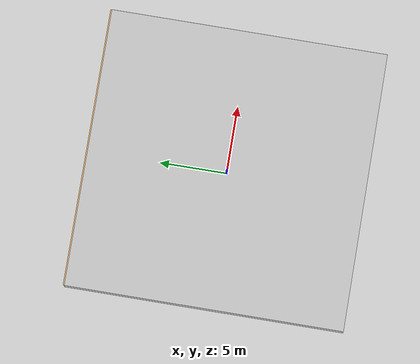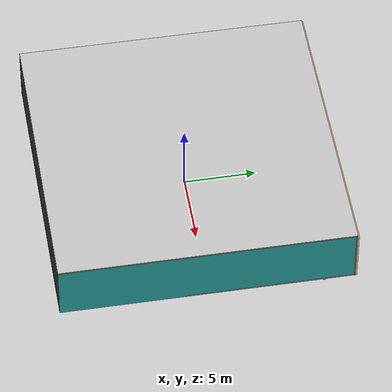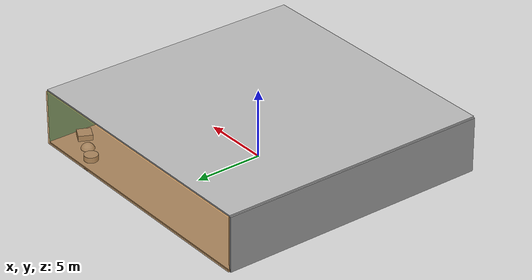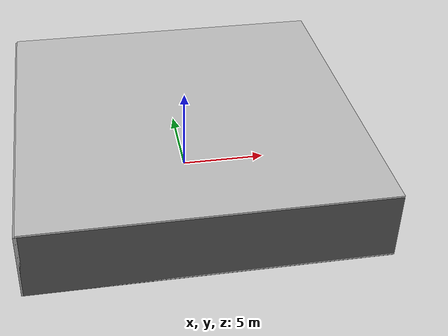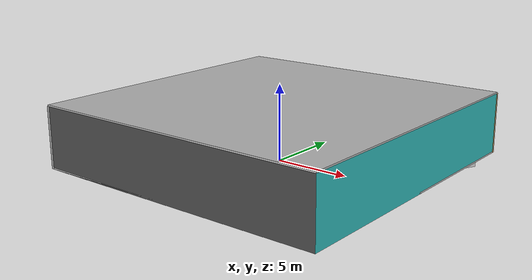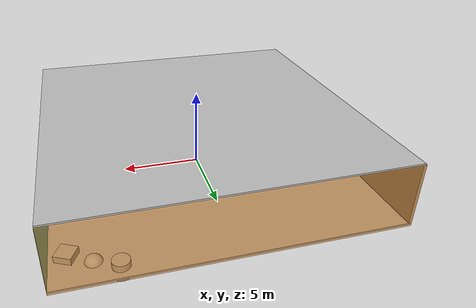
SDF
<sdf version="1.4">
 <world name="default">
  <physics type="ode">
   <max_step_size>0.001</max_step_size>
   <real_time_factor>1</real_time_factor>
   <real_time_update_rate>1000</real_time_update_rate>
   <gravity>0 0 -9.8</gravity>
  </physics>
  <scene><ambient>0.4 0.4 0.4 1</ambient><background>0.7 0.7 0.7 1</background><shadows>1</shadows></scene>
  <model name="Surrounding">
   <static>1</static>
   <link name="Ceiling">
    <collision name="Ceiling_Collision"><geometry><box><size>20 20 0.1</size></box></geometry></collision>
    <visual name="Ceiling_Visual">
     <geometry><box><size>20 20 0.1</size></box></geometry>
     <material>
      <script><uri>file://media/materials/scripts/gazebo.material</uri><name>Gazebo/LightOn</name></script>
     </material>
    </visual>
    <pose>0 0 4.05 0 0 0</pose>
   </link>
   <link name="Wall_South">
    <collision name="Wall_South_Collision">
     <geometry><box><size>20 0 4</size></box></geometry>
     <pose>0 0 2 0 -0 0</pose>
    </collision>
    <visual name="Wall_South_Visual">
     <pose>0 0 2 0 -0 0</pose>
     <geometry><box><size>20 0 4</size></box></geometry>
     <material>
      <script><uri>file://media/materials/scripts/gazebo.material</uri><name>Gazebo/Road</name></script>
     </material>
    </visual>
    <velocity_decay><linear>0</linear><angular>0</angular></velocity_decay>
    <pose>0 -10 0 0 -0 0</pose>
   </link>
   <link name="Wall_East">
    <collision name="Wall_21_Collision">
     <geometry><box><size>20 0 4</size></box></geometry>
     <pose>0 0 2 0 -0 0</pose>
    </collision>
    <visual name="Wall_21_Visual">
     <pose>0 0 2 0 -0 0</pose>
     <geometry><box><size>20 0 4</size></box></geometry>
     <material>
      <script><uri>file://media/materials/scripts/gazebo.material</uri><name>Gazebo/Turquoise</name></script>
     </material>
    </visual>
    <velocity_decay><linear>0</linear><angular>0</angular></velocity_decay>
    <pose>10 0 0 0 -0 1.5708</pose>
   </link>
   <link name="Wall_North">
    <collision name="Wall_22_Collision">
     <geometry><box><size>20 0.2 4</size></box></geometry>
     <pose>0 0 2 0 -0 0</pose>
    </collision>
    <visual name="Wall_22_Visual">
     <pose>0 0 2 0 -0 0</pose>
     <geometry><box><size>20 0.2 4</size></box></geometry>
     <material>
      <script>
       <uri>file://media/materials/scripts/gazebo.material</uri>
       <name>Gazebo/OrangeTransparent</name>
      </script>
     </material>
    </visual>
    <velocity_decay><linear>0</linear><angular>0</angular></velocity_decay>
    <pose>0 10 0 0 -0 0</pose>
   </link>
   <link name="Wall_West">
    <collision name="Wall_23_Collision">
     <geometry><box><size>20 0.2 4</size></box></geometry>
     <pose>0 0 2 0 -0 0</pose>
    </collision>
    <visual name="Wall_23_Visual">
     <pose>0 0 2 0 -0 0</pose>
     <geometry><box><size>20 0.2 4</size></box></geometry>
     <material>
      <script><uri>file://media/materials/scripts/gazebo.material</uri><name>Gazebo/GreyGradientSky</name></script>
     </material>
    </visual>
    <velocity_decay><linear>0</linear><angular>0</angular></velocity_decay>
    <pose>-10 0 0 0 0 -1.5708</pose>
   </link>
   <link name="Ground_link">
    <collision name="collision">
     <pose>0 0 .05 0 -0 0</pose>
     <geometry><box><size>20 20 0.1</size></box></geometry>
    </collision>
    <visual name="visual">
     <pose>0 0 .05 0 -0 0</pose>
     <geometry><box><size>20 20 0.1</size></box></geometry>
     <material>
      <script><uri>file://media/materials/scripts/gazebo.material</uri><name>Gazebo/LightOn</name></script>
     </material>
    </visual>
   </link>
   <static>1</static>
  </model>
  <spherical_coordinates>
   <surface_model>EARTH_WGS84</surface_model>
   <latitude_deg>0</latitude_deg>
   <longitude_deg>0</longitude_deg>
   <elevation>0</elevation>
   <heading_deg>0</heading_deg>
  </spherical_coordinates>
  <light name="lightball_0" type="diffuse">
   <diffuse>0.8 0.8 0.8 1</diffuse>
   <specular>0.2 0.2 0.2 1</specular>
   <attenuation>
    <range>100</range>
    <constant>0.7</constant>
    <linear>0.01</linear>
    <quadratic>0.001</quadratic>
   </attenuation>
   <direction>-0.5 0.1 -0.9</direction>
   <pose>7.11792321579 -1.05128709244 3.86271225037 0 0 0</pose>
  </light>
  <light name="lightball_1" type="diffuse">
   <diffuse>0.8 0.8 0.8 1</diffuse>
   <specular>0.2 0.2 0.2 1</specular>
   <attenuation>
    <range>100</range>
    <constant>0.7</constant>
    <linear>0.01</linear>
    <quadratic>0.001</quadratic>
   </attenuation>
   <direction>-0.5 0.1 -0.9</direction>
   <pose>5.03499730039 -9.23364634129 3.27266479144 0 0 0</pose>
  </light>
  <light name="lightball_2" type="diffuse">
   <diffuse>0.8 0.8 0.8 1</diffuse>
   <specular>0.2 0.2 0.2 1</specular>
   <attenuation>
    <range>100</range>
    <constant>0.7</constant>
    <linear>0.01</linear>
    <quadratic>0.001</quadratic>
   </attenuation>
   <direction>-0.5 0.1 -0.9</direction>
   <pose>2.90606978706 -1.94641373439 2.31473079325 0 0 0</pose>
  </light>
  <light name="lightball_3" type="diffuse">
   <diffuse>0.8 0.8 0.8 1</diffuse>
   <specular>0.2 0.2 0.2 1</specular>
   <attenuation>
    <range>100</range>
    <constant>0.7</constant>
    <linear>0.01</linear>
    <quadratic>0.001</quadratic>
   </attenuation>
   <direction>-0.5 0.1 -0.9</direction>
   <pose>-2.69284978091 -0.171684215922 1.58737608605 0 0 0</pose>
  </light>
  <light name="lightball_4" type="diffuse">
   <diffuse>0.8 0.8 0.8 1</diffuse>
   <specular>0.2 0.2 0.2 1</specular>
   <attenuation>
    <range>100</range>
    <constant>0.7</constant>
    <linear>0.01</linear>
    <quadratic>0.001</quadratic>
   </attenuation>
   <direction>-0.5 0.1 -0.9</direction>
   <pose>-0.12516395949 -2.90948323735 1.70592266721 0 0 0</pose>
  </light>
  <light name="lightball_5" type="diffuse">
   <diffuse>0.8 0.8 0.8 1</diffuse>
   <specular>0.2 0.2 0.2 1</specular>
   <attenuation>
    <range>100</range>
    <constant>0.7</constant>
    <linear>0.01</linear>
    <quadratic>0.001</quadratic>
   </attenuation>
   <direction>-0.5 0.1 -0.9</direction>
   <pose>0.268830400664 9.54901470234 2.7006007653 0 0 0</pose>
  </light>
  <light name="lightball_6" type="diffuse">
   <diffuse>0.8 0.8 0.8 1</diffuse>
   <specular>0.2 0.2 0.2 1</specular>
   <attenuation>
    <range>100</range>
    <constant>0.7</constant>
    <linear>0.01</linear>
    <quadratic>0.001</quadratic>
   </attenuation>
   <direction>-0.5 0.1 -0.9</direction>
   <pose>6.94771081078 -2.00231877281 1.83774377863 0 0 0</pose>
  </light>
  <light name="lightball_7" type="diffuse">
   <diffuse>0.8 0.8 0.8 1</diffuse>
   <specular>0.2 0.2 0.2 1</specular>
   <attenuation>
    <range>100</range>
    <constant>0.7</constant>
    <linear>0.01</linear>
    <quadratic>0.001</quadratic>
   </attenuation>
   <direction>-0.5 0.1 -0.9</direction>
   <pose>-8.86259489506 -3.47697758032 2.58017861692 0 0 0</pose>
  </light>
  <include><uri>model://cabinet</uri><pose>-6.83189559343 -4.48959341576 0 0 0 0.439646941447</pose></include>
  <include><uri>model://cabinet</uri><pose>-0.508447925462 -4.19630003738 0 0 0 0.0441340698067</pose></include>
  <include>
   <uri>model://robocup_3Dsim_goal</uri>
   <pose>5.04975708073 -2.50646064003 0 0 0 1.87209864376</pose>
  </include>
  <include>
   <uri>model://textured_shapes</uri>
   <pose>7.69221013757 8.46838186985 0 0 0 1.11225152638</pose>
  </include>
 </world>
</sdf>

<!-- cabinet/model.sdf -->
<sdf version="1.5">
  <model name="cabinet">
    <static>true</static>
    <link name="cabinet_bottom_plate">
      <inertial>
        <pose>0 0 -1 0 0 0</pose>
        <inertia>
          <ixx>2.050000</ixx>
          <ixy>0</ixy>
          <ixz>0</ixz>
          <iyy>2.050000</iyy>
          <iyz>0</iyz>
          <izz>2.050000</izz>
        </inertia>
        <mass>25.000000</mass>
      </inertial>
      <collision name="cabinet_bottom_plate_geom">
        <pose>0 0 0.010000 0 0 0</pose>
        <geometry>
          <box>
            <size>0.450000 0.450000 0.020000</size>
          </box>
        </geometry>
      </collision>
      <visual name="cabinet_bottom_plate_geom_visual">
        <pose>0 0 0.010000 0 0 0</pose>
        <geometry>
          <box>
            <size>0.450000 0.450000 0.020000</size>
          </box>
        </geometry>
        <material>
          <script>
            <uri>model://media/materials/scripts/gazebo.material</uri>
            <name>Gazebo/Wood</name>
          </script>
        </material>
      </visual>
      <collision name="cabinet_bottom_plate_geom_cabinet_back_plate">
        <pose>0.235000 0 0.510000 0 0 0</pose>
        <geometry>
          <box>
            <size>0.020000 0.450000 1.020000</size>
          </box>
        </geometry>
      </collision>
      <visual name="cabinet_bottom_plate_geom_cabinet_back_plate_visual">
        <pose>0.235000 0 0.510000 0 0 0</pose>
        <geometry>
          <box>
            <size>0.020000 0.450000 1.020000</size>
          </box>
        </geometry>
        <material>
          <script>
            <uri>model://media/materials/scripts/gazebo.material</uri>
            <name>Gazebo/Wood</name>
          </script>
        </material>
      </visual>
      <collision name="cabinet_bottom_plate_geom_cabinet_left_plate">
        <pose>0 0.235000 0.510000 0 0 0</pose>
        <geometry>
          <box>
            <size>0.450000 0.020000 1.020000</size>
          </box>
        </geometry>
      </collision>
      <visual name="cabinet_bottom_plate_geom_cabinet_left_plate_visual">
        <pose>0 0.235000 0.510000 0 0 0</pose>
        <geometry>
          <box>
            <size>0.450000 0.020000 1.020000</size>
          </box>
        </geometry>
        <material>
          <script>
            <uri>model://media/materials/scripts/gazebo.material</uri>
            <name>Gazebo/Wood</name>
          </script>
        </material>
      </visual>
      <collision name="cabinet_bottom_plate_geom_cabinet_middle_plate">
        <pose>0 0 0.510000 0 0 0</pose>
        <geometry>
          <box>
            <size>0.450000 0.450000 0.020000</size>
          </box>
        </geometry>
      </collision>
      <visual name="cabinet_bottom_plate_geom_cabinet_middle_plate_visual">
        <pose>0 0 0.510000 0 0 0</pose>
        <geometry>
          <box>
            <size>0.450000 0.450000 0.020000</size>
          </box>
        </geometry>
        <material>
          <script>
            <uri>model://media/materials/scripts/gazebo.material</uri>
            <name>Gazebo/Wood</name>
          </script>
        </material>
      </visual>
      <collision name="cabinet_bottom_plate_geom_cabinet_right_plate">
        <pose>0 -0.235000 0.510000 0 0 0</pose>
        <geometry>
          <box>
            <size>0.450000 0.020000 1.020000</size>
          </box>
        </geometry>
      </collision>
      <visual name="cabinet_bottom_plate_geom_cabinet_right_plate_visual">
        <pose>0 -0.235000 0.510000 0 0 0</pose>
        <geometry>
          <box>
            <size>0.450000 0.020000 1.020000</size>
          </box>
        </geometry>
        <material>
          <script>
            <uri>model://media/materials/scripts/gazebo.material</uri>
            <name>Gazebo/Wood</name>
          </script>
        </material>
      </visual>
      <collision name="cabinet_bottom_plate_geom_cabinet_top_plate">
        <pose>0 0 1.010000 0 0 0</pose>
        <geometry>
          <box>
            <size>0.450000 0.450000 0.020000</size>
          </box>
        </geometry>
      </collision>
      <visual name="cabinet_bottom_plate_geom_cabinet_top_plate_visual">
        <pose>0 0 1.010000 0 0 0</pose>
        <geometry>
          <box>
            <size>0.450000 0.450000 0.020000</size>
          </box>
        </geometry>
        <material>
          <script>
            <uri>model://media/materials/scripts/gazebo.material</uri>
            <name>Gazebo/Wood</name>
          </script>
        </material>
      </visual>
    </link>
  </model>
</sdf>

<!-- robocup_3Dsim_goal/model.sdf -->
<sdf version="1.5">
  <model name="robocup_3d_goal">
    <static>true</static>
    <link name="left_post">
      <pose>0 1.05 0.45 0 0 0</pose>
      <collision name="collision">
        <geometry>
          <cylinder>
            <radius>0.05</radius>
            <length>0.9</length>
          </cylinder>
        </geometry>
      </collision>
      <visual name="visual">
        <geometry>
          <cylinder>
            <radius>0.05</radius>
            <length>0.9</length>
          </cylinder>
        </geometry>
        <material>
          <script>
            <uri>file://media/materials/scripts/gazebo.material</uri>
            <name>Gazebo/ZincYellow</name>
          </script>
        </material>
      </visual>
    </link>
    <link name="left_support_horiz_lower">
      <pose>0.30 1.05 0.01 0 0 0</pose>
      <collision name="collision">
        <geometry>
          <box>
            <size>0.50 0.02 0.02</size>
          </box>
        </geometry>
      </collision>
      <visual name="visual">
        <geometry>
          <box>
            <size>0.50 0.02 0.02</size>
          </box>
        </geometry>
        <material>
          <script>
            <uri>file://media/materials/scripts/gazebo.material</uri>
            <name>Gazebo/White</name>
          </script>
        </material>
      </visual>
    </link>
    <link name="left_support_horiz_upper">
      <pose>0.30 1.05 0.79 0 0 0</pose>
      <collision name="collision">
        <geometry>
          <box>
            <size>0.50 0.02 0.02</size>
          </box>
        </geometry>
      </collision>
      <visual name="visual">
        <geometry>
          <box>
            <size>0.50 0.02 0.02</size>
          </box>
        </geometry>
        <material>
          <script>
            <uri>file://media/materials/scripts/gazebo.material</uri>
            <name>Gazebo/White</name>
          </script>
        </material>
      </visual>
    </link>
    <link name="left_support_vertical">
      <pose>0.56 1.05 0.4 0 1.5708 0</pose>
      <collision name="collision">
        <geometry>
          <box>
            <size>0.80 0.02 0.02</size>
          </box>
        </geometry>
      </collision>
      <visual name="visual">
        <geometry>
          <box>
            <size>0.80 0.02 0.02</size>
          </box>
        </geometry>
        <material>
          <script>
            <uri>file://media/materials/scripts/gazebo.material</uri>
            <name>Gazebo/White</name>
          </script>
        </material>
      </visual>
    </link>
    <link name="right_support_horiz_lower">
      <pose>0.30 -1.05 0.01 0 0 0</pose>
      <collision name="collision">
        <geometry>
          <box>
            <size>0.50 0.02 0.02</size>
          </box>
        </geometry>
      </collision>
      <visual name="visual">
        <geometry>
          <box>
            <size>0.50 0.02 0.02</size>
          </box>
        </geometry>
        <material>
          <script>
            <uri>file://media/materials/scripts/gazebo.material</uri>
            <name>Gazebo/White</name>
          </script>
        </material>
      </visual>
    </link>
    <link name="right_support_horiz_upper">
      <pose>0.30 -1.05 0.79 0 0 0</pose>
      <collision name="collision">
        <geometry>
          <box>
            <size>0.50 0.02 0.02</size>
          </box>
        </geometry>
      </collision>
      <visual name="visual">
        <geometry>
          <box>
            <size>0.50 0.02 0.02</size>
          </box>
        </geometry>
        <material>
          <script>
            <uri>file://media/materials/scripts/gazebo.material</uri>
            <name>Gazebo/White</name>
          </script>
        </material>
      </visual>
    </link>
    <link name="right_support_vertical">
      <pose>0.56 -1.05 0.4 0 1.5708 0</pose>
      <collision name="collision">
        <geometry>
          <box>
            <size>0.80 0.02 0.02</size>
          </box>
        </geometry>
      </collision>
      <visual name="visual">
        <geometry>
          <box>
            <size>0.80 0.02 0.02</size>
          </box>
        </geometry>
        <material>
          <script>
            <uri>file://media/materials/scripts/gazebo.material</uri>
            <name>Gazebo/White</name>
          </script>
        </material>
      </visual>
    </link>
    <link name="center_support_horiz_lower">
      <pose>0.56 0 0.01 0 1.5708 0</pose>
      <collision name="collision">
        <geometry>
          <box>
            <size>0.02 2.08 0.02</size>
          </box>
        </geometry>
      </collision>
      <visual name="visual">
        <geometry>
          <box>
            <size>0.02 2.08 0.02</size>
          </box>
        </geometry>
        <material>
          <script>
            <uri>file://media/materials/scripts/gazebo.material</uri>
            <name>Gazebo/White</name>
          </script>
        </material>
      </visual>
    </link>
    <link name="center_support_horiz_upper">
      <pose>0.56 0 0.79 0 1.5708 0</pose>
      <collision name="collision">
        <geometry>
          <box>
            <size>0.02 2.08 0.02</size>
          </box>
        </geometry>
      </collision>
      <visual name="visual">
        <geometry>
          <box>
            <size>0.02 2.08 0.02</size>
          </box>
        </geometry>
        <material>
          <script>
            <uri>file://media/materials/scripts/gazebo.material</uri>
            <name>Gazebo/White</name>
          </script>
        </material>
      </visual>
    </link>
    <link name="right_post">
      <pose>0 -1.05 0.45 0 0 0</pose>
      <collision name="collision">
        <geometry>
          <cylinder>
            <radius>0.05</radius>
            <length>0.9</length>
          </cylinder>
        </geometry>
      </collision>
      <visual name="visual">
        <geometry>
          <cylinder>
            <radius>0.05</radius>
            <length>0.9</length>
          </cylinder>
        </geometry>
        <material>
          <script>
            <uri>file://media/materials/scripts/gazebo.material</uri>
            <name>Gazebo/ZincYellow</name>
          </script>
        </material>
      </visual>
    </link>
    <link name="crossbar">
      <pose>0 0 0.85 1.57 1.57 0</pose>
      <collision name="collision">
        <geometry>
          <cylinder>
            <radius>0.05</radius>
            <length>2.0</length>
          </cylinder>
        </geometry>
      </collision>
      <visual name="visual">
        <geometry>
          <cylinder>
            <radius>0.05</radius>
            <length>2.0</length>
          </cylinder>
        </geometry>
        <material>
          <script>
            <uri>file://media/materials/scripts/gazebo.material</uri>
            <name>Gazebo/ZincYellow</name>
          </script>
        </material>
      </visual>
    </link>
    <link name="center_net">
      <pose>0.56 0 0.40 0 0 0</pose>
      <collision name="collision">
        <geometry>
          <box>
            <size>0.01 2.1 0.80</size>
          </box>
        </geometry>
      </collision>
      <visual name="visual">
        <geometry>
          <box>
            <size>0.01 2.1 0.80</size>
          </box>
        </geometry>
        <material>
          <script>
            <uri>model://../model_source/models/robocup09_spl_field/materials/scripts/</uri>
            <uri>model://../model_source/models/robocup09_spl_field/materials/textures/</uri>
            <name>RoboCup/Net</name>
          </script>
        </material>
      </visual>
    </link>
    <link name="left_net">
      <pose>0.30 1.05 0.40 0 0 0</pose>
      <collision name="collision">
        <geometry>
          <box>
            <size>0.50 0.01 0.76</size>
          </box>
        </geometry>
      </collision>
      <visual name="visual">
        <geometry>
          <box>
            <size>0.50 0.01 0.76</size>
          </box>
        </geometry>
        <material>
          <script>
            <uri>model://../model_source/models/robocup09_spl_field/materials/scripts/</uri>
            <uri>model://../model_source/models/robocup09_spl_field/materials/textures/</uri>
            <name>RoboCup/Net</name>
          </script>
        </material>
      </visual>
    </link>
    <link name="right_net">
      <pose>0.30 -1.05 0.40 0 0 0</pose>
      <collision name="collision">
        <geometry>
          <box>
            <size>0.50 0.01 0.76</size>
          </box>
        </geometry>
      </collision>
      <visual name="visual">
        <geometry>
          <box>
            <size>0.50 0.01 0.76</size>
          </box>
        </geometry>
        <material>
          <script>
            <uri>model://../model_source/models/robocup09_spl_field/materials/scripts/</uri>
            <uri>model://../model_source/models/robocup09_spl_field/materials/textures/</uri>
            <name>RoboCup/Net</name>
          </script>
        </material>
      </visual>
    </link>
  </model>
</sdf>

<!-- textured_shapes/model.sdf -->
<sdf version="1.6">
  <model name="textured_shapes">
    <pose>0 0 0.5 0 0 0</pose>
    <link name="box">
      <pose>0 -1.5 0 0 0 0</pose>
      <collision name="collision">
        <geometry>
          <box>
            <size>1 1 1</size>
          </box>
        </geometry>
      </collision>
      <visual name="visual">
        <geometry>
          <box>
            <size>1 1 1</size>
          </box>
        </geometry>
        <material>
          <script>
            <uri>model://../model_source/models/textured_shapes/materials/scripts</uri>
            <uri>model://../model_source/models/textured_shapes/materials/textures</uri>
            <name>TexturedShape/Squares</name>
          </script>
        </material>
      </visual>
    </link>
    <link name="sphere">
      <collision name="collision">
        <geometry>
          <sphere>
            <radius>0.5</radius>
          </sphere>
        </geometry>
      </collision>
      <visual name="visual">
        <geometry>
          <sphere>
            <radius>0.5</radius>
          </sphere>
        </geometry>
        <material>
          <script>
            <uri>model://../model_source/models/textured_shapes/materials/scripts</uri>
            <uri>model://../model_source/models/textured_shapes/materials/textures</uri>
            <name>TexturedShape/Squares</name>
          </script>
        </material>
      </visual>
    </link>
    <link name="cylinder">
      <pose>0 1.5 0 0 0 0</pose>
      <collision name="collision">
        <geometry>
          <cylinder>
            <radius>0.5</radius>
            <length>1</length>
          </cylinder>
        </geometry>
      </collision>
      <visual name="visual">
        <geometry>
          <cylinder>
            <radius>0.5</radius>
            <length>1</length>
          </cylinder>
        </geometry>
        <material>
          <script>
            <uri>model://../model_source/models/textured_shapes/materials/scripts</uri>
            <uri>model://../model_source/models/textured_shapes/materials/textures</uri>
            <name>TexturedShape/Squares</name>
          </script>
        </material>
      </visual>
    </link>
  </model>
</sdf>
